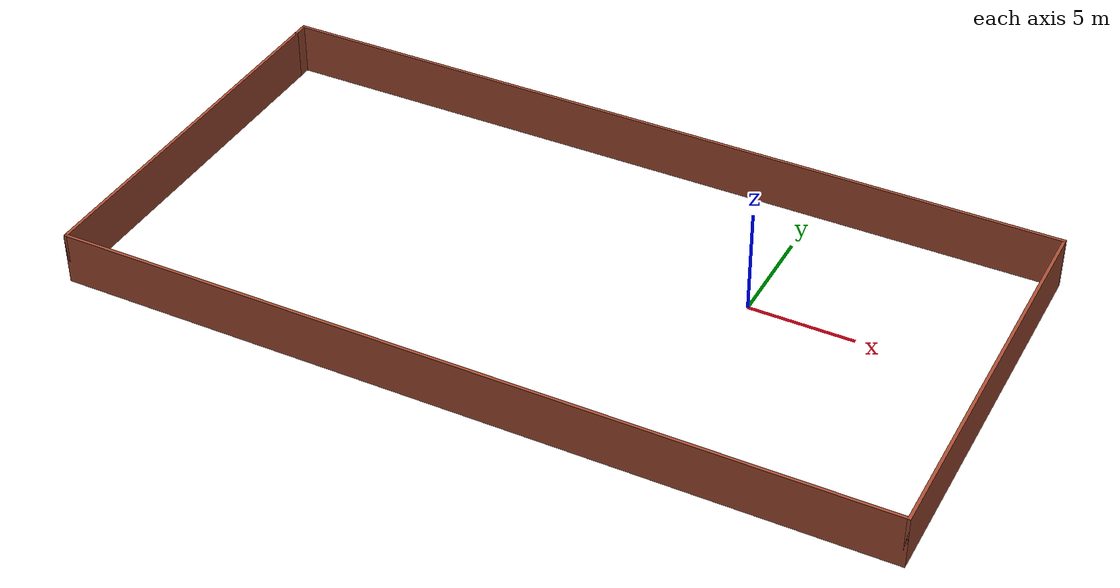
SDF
<?xml version='1.0'?>
<sdf version='1.6'>
  <model name='fence'>
    <pose frame=''>-7.89752 -2.06202 0 0 -0 0</pose>
    <link name='Wall_12'>
      <collision name='Wall_12_Collision'>
        <geometry>
          <box>
            <size>18.75 0.15 2.5</size>
          </box>
        </geometry>
        <pose frame=''>0 0 1.25 0 -0 0</pose>
      </collision>
      <visual name='Wall_12_Visual'>
        <pose frame=''>0 0 1.25 0 -0 0</pose>
        <geometry>
          <box>
            <size>18.75 0.15 2.5</size>
          </box>
        </geometry>
        <material>
          <script>
            <uri>file://media/materials/scripts/gazebo.material</uri>
            <name>Gazebo/Bricks</name>
          </script>
          <ambient>1 1 1 1</ambient>
        </material>
        <meta>
          <layer>0</layer>
        </meta>
      </visual>
      <pose frame=''>-19.425 -0.375 0 0 -0 -1.5708</pose>
    </link>
    <link name='Wall_13'>
      <collision name='Wall_13_Collision'>
        <geometry>
          <box>
            <size>39 0.15 2.5</size>
          </box>
        </geometry>
        <pose frame=''>0 0 1.25 0 -0 0</pose>
      </collision>
      <visual name='Wall_13_Visual'>
        <pose frame=''>0 0 1.25 0 -0 0</pose>
        <geometry>
          <box>
            <size>39 0.15 2.5</size>
          </box>
        </geometry>
        <material>
          <script>
            <uri>file://media/materials/scripts/gazebo.material</uri>
            <name>Gazebo/Bricks</name>
          </script>
          <ambient>1 1 1 1</ambient>
        </material>
        <meta>
          <layer>0</layer>
        </meta>
      </visual>
      <pose frame=''>0 -9.675 0 0 -0 0</pose>
    </link>
    <link name='Wall_14'>
      <collision name='Wall_14_Collision'>
        <geometry>
          <box>
            <size>19.5 0.15 2.5</size>
          </box>
        </geometry>
        <pose frame=''>0 0 1.25 0 -0 0</pose>
      </collision>
      <visual name='Wall_14_Visual'>
        <pose frame=''>0 0 1.25 0 -0 0</pose>
        <geometry>
          <box>
            <size>19.5 0.15 2.5</size>
          </box>
        </geometry>
        <material>
          <script>
            <uri>file://media/materials/scripts/gazebo.material</uri>
            <name>Gazebo/Bricks</name>
          </script>
          <ambient>1 1 1 1</ambient>
        </material>
        <meta>
          <layer>0</layer>
        </meta>
      </visual>
      <pose frame=''>19.425 -0 0 0 -0 1.5708</pose>
    </link>
    <link name='Wall_15'>
      <collision name='Wall_15_Collision'>
        <geometry>
          <box>
            <size>39 0.15 2.5</size>
          </box>
        </geometry>
        <pose frame=''>0 0 1.25 0 -0 0</pose>
      </collision>
      <visual name='Wall_15_Visual'>
        <pose frame=''>0 0 1.25 0 -0 0</pose>
        <geometry>
          <box>
            <size>39 0.15 2.5</size>
          </box>
        </geometry>
        <material>
          <script>
            <uri>file://media/materials/scripts/gazebo.material</uri>
            <name>Gazebo/Bricks</name>
          </script>
          <ambient>1 1 1 1</ambient>
        </material>
        <meta>
          <layer>0</layer>
        </meta>
      </visual>
      <pose frame=''>0 9.675 0 0 -0 3.14159</pose>
    </link>
    <link name='Wall_16'>
      <collision name='Wall_16_Collision'>
        <geometry>
          <box>
            <size>0.9 0.15 2.5</size>
          </box>
        </geometry>
        <pose frame=''>0 0 1.25 0 -0 0</pose>
      </collision>
      <visual name='Wall_16_Visual'>
        <pose frame=''>0 0 1.25 0 -0 0</pose>
        <geometry>
          <box>
            <size>0.9 0.15 2.5</size>
          </box>
        </geometry>
        <material>
          <script>
            <uri>file://media/materials/scripts/gazebo.material</uri>
            <name>Gazebo/Bricks</name>
          </script>
          <ambient>1 1 1 1</ambient>
        </material>
        <meta>
          <layer>0</layer>
        </meta>
      </visual>
      <pose frame=''>-19.425 9.3 0 0 -0 -1.5708</pose>
    </link>
    <static>1</static>
  </model>
</sdf>
